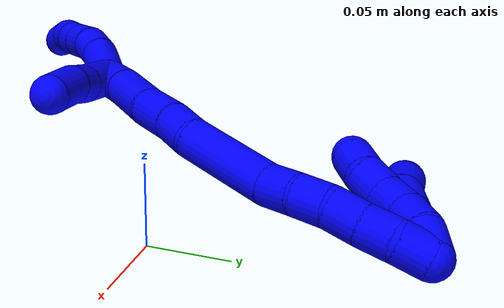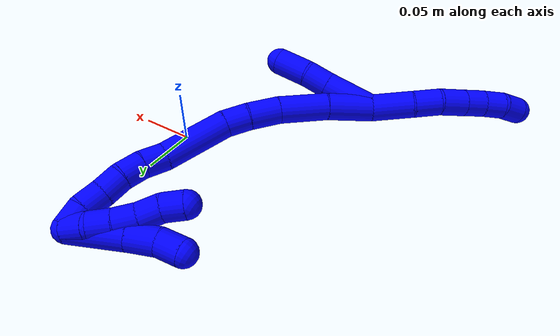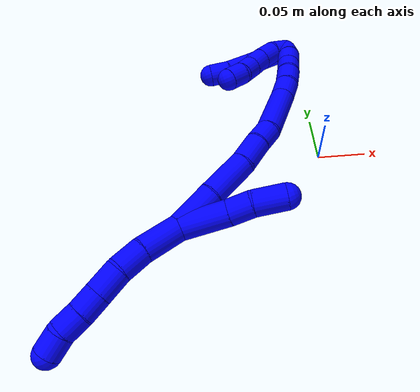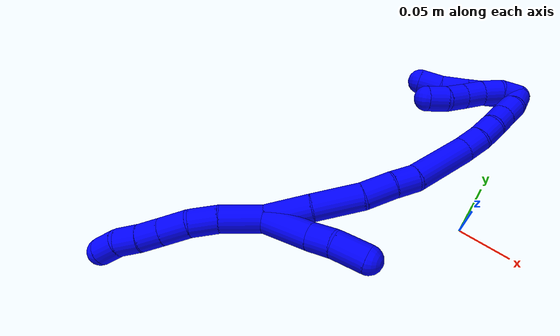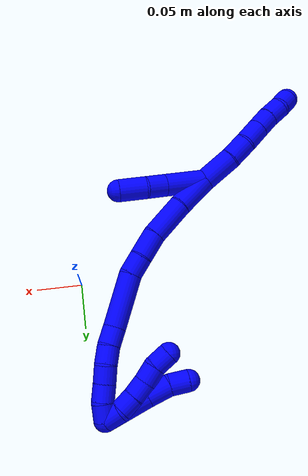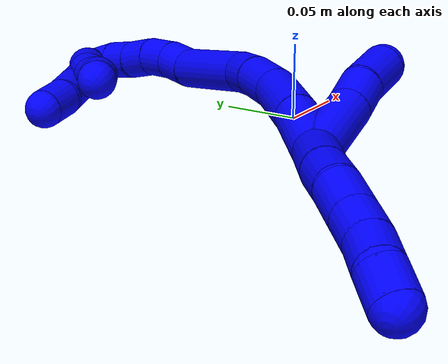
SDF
<sdf version="1.7">
 <world name="default">
  <model name="1">
   <static>0</static>
   <link name="1">
    <collision name="collision-cylinder-e_1_2_8">
     <pose>-0.010186 -0.006164 -0.015631 2.76595 -0.544979 -1.94704</pose>
     <geometry><cylinder><radius>0.0125</radius><length>0.039297</length></cylinder></geometry>
     <surface>
      <friction><ode><mu>1.16</mu><mu2>1.16</mu2><slip1>0</slip1><slip2>0</slip2></ode></friction>
      <contact><ode><kp>1e+06</kp><kd>1</kd><max_vel>0</max_vel><min_depth>0.001</min_depth></ode></contact>
     </surface>
    </collision>
    <visual name="visual-cylinder-e_1_2_8">
     <pose>-0.010186 -0.006164 -0.015631 2.76595 -0.544979 -1.94704</pose>
     <geometry><cylinder><radius>0.0125</radius><length>0.039297</length></cylinder></geometry>
     <material><ambient>0 0 1 1</ambient></material>
    </visual>
    <collision name="collision-cylinder-e_2_8_9">
     <pose>-0.026179 -0.017944 -0.040988 2.61799 -0.477225 -1.47422</pose>
     <geometry><cylinder><radius>0.0125</radius><length>0.025287</length></cylinder></geometry>
     <surface>
      <friction><ode><mu>1.16</mu><mu2>1.16</mu2><slip1>0</slip1><slip2>0</slip2></ode></friction>
      <contact><ode><kp>1e+06</kp><kd>1</kd><max_vel>0</max_vel><min_depth>0.001</min_depth></ode></contact>
     </surface>
    </collision>
    <visual name="visual-cylinder-e_2_8_9">
     <pose>-0.026179 -0.017944 -0.040988 2.61799 -0.477225 -1.47422</pose>
     <geometry><cylinder><radius>0.0125</radius><length>0.025287</length></cylinder></geometry>
     <material><ambient>0 0 1 1</ambient></material>
    </visual>
    <collision name="collision-cylinder-e_3_9_10">
     <pose>-0.035426 -0.030533 -0.060449 2.52001 -0.279669 -0.826012</pose>
     <geometry><cylinder><radius>0.0125</radius><length>0.02492</length></cylinder></geometry>
     <surface>
      <friction><ode><mu>1.16</mu><mu2>1.16</mu2><slip1>0</slip1><slip2>0</slip2></ode></friction>
      <contact><ode><kp>1e+06</kp><kd>1</kd><max_vel>0</max_vel><min_depth>0.001</min_depth></ode></contact>
     </surface>
    </collision>
    <visual name="visual-cylinder-e_3_9_10">
     <pose>-0.035426 -0.030533 -0.060449 2.52001 -0.279669 -0.826012</pose>
     <geometry><cylinder><radius>0.0125</radius><length>0.02492</length></cylinder></geometry>
     <material><ambient>0 0 1 1</ambient></material>
    </visual>
    <collision name="collision-cylinder-e_4_10_11">
     <pose>-0.041743 -0.04311 -0.078096 2.52532 -0.288602 -0.856589</pose>
     <geometry><cylinder><radius>0.0125</radius><length>0.020225</length></cylinder></geometry>
     <surface>
      <friction><ode><mu>1.16</mu><mu2>1.16</mu2><slip1>0</slip1><slip2>0</slip2></ode></friction>
      <contact><ode><kp>1e+06</kp><kd>1</kd><max_vel>0</max_vel><min_depth>0.001</min_depth></ode></contact>
     </surface>
    </collision>
    <visual name="visual-cylinder-e_4_10_11">
     <pose>-0.041743 -0.04311 -0.078096 2.52532 -0.288602 -0.856589</pose>
     <geometry><cylinder><radius>0.0125</radius><length>0.020225</length></cylinder></geometry>
     <material><ambient>0 0 1 1</ambient></material>
    </visual>
    <collision name="collision-cylinder-e_5_11_12">
     <pose>-0.047367 -0.053471 -0.094465 2.62923 -0.275746 -0.974272</pose>
     <geometry><cylinder><radius>0.0125</radius><length>0.02017</length></cylinder></geometry>
     <surface>
      <friction><ode><mu>1.16</mu><mu2>1.16</mu2><slip1>0</slip1><slip2>0</slip2></ode></friction>
      <contact><ode><kp>1e+06</kp><kd>1</kd><max_vel>0</max_vel><min_depth>0.001</min_depth></ode></contact>
     </surface>
    </collision>
    <visual name="visual-cylinder-e_5_11_12">
     <pose>-0.047367 -0.053471 -0.094465 2.62923 -0.275746 -0.974272</pose>
     <geometry><cylinder><radius>0.0125</radius><length>0.02017</length></cylinder></geometry>
     <material><ambient>0 0 1 1</ambient></material>
    </visual>
    <collision name="collision-cylinder-e_6_12_6">
     <pose>-0.050156 -0.064517 -0.110762 2.4655 -0.004314 -0.012272</pose>
     <geometry><cylinder><radius>0.0125</radius><length>0.020102</length></cylinder></geometry>
     <surface>
      <friction><ode><mu>1.16</mu><mu2>1.16</mu2><slip1>0</slip1><slip2>0</slip2></ode></friction>
      <contact><ode><kp>1e+06</kp><kd>1</kd><max_vel>0</max_vel><min_depth>0.001</min_depth></ode></contact>
     </surface>
    </collision>
    <visual name="visual-cylinder-e_6_12_6">
     <pose>-0.050156 -0.064517 -0.110762 2.4655 -0.004314 -0.012272</pose>
     <geometry><cylinder><radius>0.0125</radius><length>0.020102</length></cylinder></geometry>
     <material><ambient>0 0 1 1</ambient></material>
    </visual>
    <collision name="collision-cylinder-e_1_2_13">
     <pose>0.002231 -0.001014 0.023285 0.043506 0.095439 0.002078</pose>
     <geometry><cylinder><radius>0.0125</radius><length>0.046827</length></cylinder></geometry>
     <surface>
      <friction><ode><mu>1.16</mu><mu2>1.16</mu2><slip1>0</slip1><slip2>0</slip2></ode></friction>
      <contact><ode><kp>1e+06</kp><kd>1</kd><max_vel>0</max_vel><min_depth>0.001</min_depth></ode></contact>
     </surface>
    </collision>
    <visual name="visual-cylinder-e_1_2_13">
     <pose>0.002231 -0.001014 0.023285 0.043506 0.095439 0.002078</pose>
     <geometry><cylinder><radius>0.0125</radius><length>0.046827</length></cylinder></geometry>
     <material><ambient>0 0 1 1</ambient></material>
    </visual>
    <collision name="collision-cylinder-e_2_13_14">
     <pose>0.004748 -0.001805 0.057738 -0.019862 0.02553 -0.000254</pose>
     <geometry><cylinder><radius>0.0125</radius><length>0.022348</length></cylinder></geometry>
     <surface>
      <friction><ode><mu>1.16</mu><mu2>1.16</mu2><slip1>0</slip1><slip2>0</slip2></ode></friction>
      <contact><ode><kp>1e+06</kp><kd>1</kd><max_vel>0</max_vel><min_depth>0.001</min_depth></ode></contact>
     </surface>
    </collision>
    <visual name="visual-cylinder-e_2_13_14">
     <pose>0.004748 -0.001805 0.057738 -0.019862 0.02553 -0.000254</pose>
     <geometry><cylinder><radius>0.0125</radius><length>0.022348</length></cylinder></geometry>
     <material><ambient>0 0 1 1</ambient></material>
    </visual>
    <collision name="collision-cylinder-e_3_14_5">
     <pose>0.007688 -0.003292 0.083992 0.112785 0.173114 0.009797</pose>
     <geometry><cylinder><radius>0.0125</radius><length>0.030825</length></cylinder></geometry>
     <surface>
      <friction><ode><mu>1.16</mu><mu2>1.16</mu2><slip1>0</slip1><slip2>0</slip2></ode></friction>
      <contact><ode><kp>1e+06</kp><kd>1</kd><max_vel>0</max_vel><min_depth>0.001</min_depth></ode></contact>
     </surface>
    </collision>
    <visual name="visual-cylinder-e_3_14_5">
     <pose>0.007688 -0.003292 0.083992 0.112785 0.173114 0.009797</pose>
     <geometry><cylinder><radius>0.0125</radius><length>0.030825</length></cylinder></geometry>
     <material><ambient>0 0 1 1</ambient></material>
    </visual>
    <collision name="collision-cylinder-e_1_2_15">
     <pose>0.006608 0.010851 0.017107 -0.565263 0.31533 -0.092275</pose>
     <geometry><cylinder><radius>0.0125</radius><length>0.042617</length></cylinder></geometry>
     <surface>
      <friction><ode><mu>1.16</mu><mu2>1.16</mu2><slip1>0</slip1><slip2>0</slip2></ode></friction>
      <contact><ode><kp>1e+06</kp><kd>1</kd><max_vel>0</max_vel><min_depth>0.001</min_depth></ode></contact>
     </surface>
    </collision>
    <visual name="visual-cylinder-e_1_2_15">
     <pose>0.006608 0.010851 0.017107 -0.565263 0.31533 -0.092275</pose>
     <geometry><cylinder><radius>0.0125</radius><length>0.042617</length></cylinder></geometry>
     <material><ambient>0 0 1 1</ambient></material>
    </visual>
    <collision name="collision-cylinder-e_2_15_16">
     <pose>0.02243 0.033124 0.051261 -0.590306 0.421989 -0.130054</pose>
     <geometry><cylinder><radius>0.0125</radius><length>0.044988</length></cylinder></geometry>
     <surface>
      <friction><ode><mu>1.16</mu><mu2>1.16</mu2><slip1>0</slip1><slip2>0</slip2></ode></friction>
      <contact><ode><kp>1e+06</kp><kd>1</kd><max_vel>0</max_vel><min_depth>0.001</min_depth></ode></contact>
     </surface>
    </collision>
    <visual name="visual-cylinder-e_2_15_16">
     <pose>0.02243 0.033124 0.051261 -0.590306 0.421989 -0.130054</pose>
     <geometry><cylinder><radius>0.0125</radius><length>0.044988</length></cylinder></geometry>
     <material><ambient>0 0 1 1</ambient></material>
    </visual>
    <collision name="collision-cylinder-e_3_16_17">
     <pose>0.038166 0.053466 0.077448 -0.773233 0.472228 -0.195278</pose>
     <geometry><cylinder><radius>0.0125</radius><length>0.02868</length></cylinder></geometry>
     <surface>
      <friction><ode><mu>1.16</mu><mu2>1.16</mu2><slip1>0</slip1><slip2>0</slip2></ode></friction>
      <contact><ode><kp>1e+06</kp><kd>1</kd><max_vel>0</max_vel><min_depth>0.001</min_depth></ode></contact>
     </surface>
    </collision>
    <visual name="visual-cylinder-e_3_16_17">
     <pose>0.038166 0.053466 0.077448 -0.773233 0.472228 -0.195278</pose>
     <geometry><cylinder><radius>0.0125</radius><length>0.02868</length></cylinder></geometry>
     <material><ambient>0 0 1 1</ambient></material>
    </visual>
    <collision name="collision-cylinder-e_4_17_18">
     <pose>0.050868 0.068585 0.093203 -0.75298 0.59828 -0.242649</pose>
     <geometry><cylinder><radius>0.0125</radius><length>0.021943</length></cylinder></geometry>
     <surface>
      <friction><ode><mu>1.16</mu><mu2>1.16</mu2><slip1>0</slip1><slip2>0</slip2></ode></friction>
      <contact><ode><kp>1e+06</kp><kd>1</kd><max_vel>0</max_vel><min_depth>0.001</min_depth></ode></contact>
     </surface>
    </collision>
    <visual name="visual-cylinder-e_4_17_18">
     <pose>0.050868 0.068585 0.093203 -0.75298 0.59828 -0.242649</pose>
     <geometry><cylinder><radius>0.0125</radius><length>0.021943</length></cylinder></geometry>
     <material><ambient>0 0 1 1</ambient></material>
    </visual>
    <collision name="collision-cylinder-e_5_18_19">
     <pose>0.07505 0.095988 0.111844 -1.05486 0.636126 -0.378947</pose>
     <geometry><cylinder><radius>0.0125</radius><length>0.060609</length></cylinder></geometry>
     <surface>
      <friction><ode><mu>1.16</mu><mu2>1.16</mu2><slip1>0</slip1><slip2>0</slip2></ode></friction>
      <contact><ode><kp>1e+06</kp><kd>1</kd><max_vel>0</max_vel><min_depth>0.001</min_depth></ode></contact>
     </surface>
    </collision>
    <visual name="visual-cylinder-e_5_18_19">
     <pose>0.07505 0.095988 0.111844 -1.05486 0.636126 -0.378947</pose>
     <geometry><cylinder><radius>0.0125</radius><length>0.060609</length></cylinder></geometry>
     <material><ambient>0 0 1 1</ambient></material>
    </visual>
    <collision name="collision-cylinder-e_6_19_20">
     <pose>0.097315 0.12541 0.128799 -1.03052 0.418362 -0.239281</pose>
     <geometry><cylinder><radius>0.0125</radius><length>0.020976</length></cylinder></geometry>
     <surface>
      <friction><ode><mu>1.16</mu><mu2>1.16</mu2><slip1>0</slip1><slip2>0</slip2></ode></friction>
      <contact><ode><kp>1e+06</kp><kd>1</kd><max_vel>0</max_vel><min_depth>0.001</min_depth></ode></contact>
     </surface>
    </collision>
    <visual name="visual-cylinder-e_6_19_20">
     <pose>0.097315 0.12541 0.128799 -1.03052 0.418362 -0.239281</pose>
     <geometry><cylinder><radius>0.0125</radius><length>0.020976</length></cylinder></geometry>
     <material><ambient>0 0 1 1</ambient></material>
    </visual>
    <collision name="collision-cylinder-e_7_20_21">
     <pose>0.106469 0.141885 0.136853 -1.2091 0.506169 -0.353611</pose>
     <geometry><cylinder><radius>0.0125</radius><length>0.020188</length></cylinder></geometry>
     <surface>
      <friction><ode><mu>1.16</mu><mu2>1.16</mu2><slip1>0</slip1><slip2>0</slip2></ode></friction>
      <contact><ode><kp>1e+06</kp><kd>1</kd><max_vel>0</max_vel><min_depth>0.001</min_depth></ode></contact>
     </surface>
    </collision>
    <visual name="visual-cylinder-e_7_20_21">
     <pose>0.106469 0.141885 0.136853 -1.2091 0.506169 -0.353611</pose>
     <geometry><cylinder><radius>0.0125</radius><length>0.020188</length></cylinder></geometry>
     <material><ambient>0 0 1 1</ambient></material>
    </visual>
    <collision name="collision-cylinder-e_8_21_22">
     <pose>0.117732 0.157666 0.14166 -1.35065 0.690414 -0.560878</pose>
     <geometry><cylinder><radius>0.0125</radius><length>0.02</length></cylinder></geometry>
     <surface>
      <friction><ode><mu>1.16</mu><mu2>1.16</mu2><slip1>0</slip1><slip2>0</slip2></ode></friction>
      <contact><ode><kp>1e+06</kp><kd>1</kd><max_vel>0</max_vel><min_depth>0.001</min_depth></ode></contact>
     </surface>
    </collision>
    <visual name="visual-cylinder-e_8_21_22">
     <pose>0.117732 0.157666 0.14166 -1.35065 0.690414 -0.560878</pose>
     <geometry><cylinder><radius>0.0125</radius><length>0.02</length></cylinder></geometry>
     <material><ambient>0 0 1 1</ambient></material>
    </visual>
    <collision name="collision-cylinder-e_9_22_23">
     <pose>0.129905 0.173034 0.14553 -1.29904 0.619281 -0.476702</pose>
     <geometry><cylinder><radius>0.0125</radius><length>0.02</length></cylinder></geometry>
     <surface>
      <friction><ode><mu>1.16</mu><mu2>1.16</mu2><slip1>0</slip1><slip2>0</slip2></ode></friction>
      <contact><ode><kp>1e+06</kp><kd>1</kd><max_vel>0</max_vel><min_depth>0.001</min_depth></ode></contact>
     </surface>
    </collision>
    <visual name="visual-cylinder-e_9_22_23">
     <pose>0.129905 0.173034 0.14553 -1.29904 0.619281 -0.476702</pose>
     <geometry><cylinder><radius>0.0125</radius><length>0.02</length></cylinder></geometry>
     <material><ambient>0 0 1 1</ambient></material>
    </visual>
    <collision name="collision-cylinder-e_10_23_1">
     <pose>0.14225 0.188427 0.147231 -1.63495 0.712937 -0.755951</pose>
     <geometry><cylinder><radius>0.0125</radius><length>0.02</length></cylinder></geometry>
     <surface>
      <friction><ode><mu>1.16</mu><mu2>1.16</mu2><slip1>0</slip1><slip2>0</slip2></ode></friction>
      <contact><ode><kp>1e+06</kp><kd>1</kd><max_vel>0</max_vel><min_depth>0.001</min_depth></ode></contact>
     </surface>
    </collision>
    <visual name="visual-cylinder-e_10_23_1">
     <pose>0.14225 0.188427 0.147231 -1.63495 0.712937 -0.755951</pose>
     <geometry><cylinder><radius>0.0125</radius><length>0.02</length></cylinder></geometry>
     <material><ambient>0 0 1 1</ambient></material>
    </visual>
    <collision name="collision-cylinder-e_1_1_24">
     <pose>0.142389 0.195013 0.139123 3.01596 -0.694641 -2.79751</pose>
     <geometry><cylinder><radius>0.0125</radius><length>0.02</length></cylinder></geometry>
     <surface>
      <friction><ode><mu>1.16</mu><mu2>1.16</mu2><slip1>0</slip1><slip2>0</slip2></ode></friction>
      <contact><ode><kp>1e+06</kp><kd>1</kd><max_vel>0</max_vel><min_depth>0.001</min_depth></ode></contact>
     </surface>
    </collision>
    <visual name="visual-cylinder-e_1_1_24">
     <pose>0.142389 0.195013 0.139123 3.01596 -0.694641 -2.79751</pose>
     <geometry><cylinder><radius>0.0125</radius><length>0.02</length></cylinder></geometry>
     <material><ambient>0 0 1 1</ambient></material>
    </visual>
    <collision name="collision-cylinder-e_2_24_25">
     <pose>0.130832 0.190132 0.123881 2.66665 -0.541705 -1.70772</pose>
     <geometry><cylinder><radius>0.0125</radius><length>0.02</length></cylinder></geometry>
     <surface>
      <friction><ode><mu>1.16</mu><mu2>1.16</mu2><slip1>0</slip1><slip2>0</slip2></ode></friction>
      <contact><ode><kp>1e+06</kp><kd>1</kd><max_vel>0</max_vel><min_depth>0.001</min_depth></ode></contact>
     </surface>
    </collision>
    <visual name="visual-cylinder-e_2_24_25">
     <pose>0.130832 0.190132 0.123881 2.66665 -0.541705 -1.70772</pose>
     <geometry><cylinder><radius>0.0125</radius><length>0.02</length></cylinder></geometry>
     <material><ambient>0 0 1 1</ambient></material>
    </visual>
    <collision name="collision-cylinder-e_3_25_26">
     <pose>0.120301 0.18128 0.109423 2.51652 -0.567567 -1.46851</pose>
     <geometry><cylinder><radius>0.0125</radius><length>0.02</length></cylinder></geometry>
     <surface>
      <friction><ode><mu>1.16</mu><mu2>1.16</mu2><slip1>0</slip1><slip2>0</slip2></ode></friction>
      <contact><ode><kp>1e+06</kp><kd>1</kd><max_vel>0</max_vel><min_depth>0.001</min_depth></ode></contact>
     </surface>
    </collision>
    <visual name="visual-cylinder-e_3_25_26">
     <pose>0.120301 0.18128 0.109423 2.51652 -0.567567 -1.46851</pose>
     <geometry><cylinder><radius>0.0125</radius><length>0.02</length></cylinder></geometry>
     <material><ambient>0 0 1 1</ambient></material>
    </visual>
    <collision name="collision-cylinder-e_4_26_27">
     <pose>0.108299 0.171487 0.096886 2.43564 -0.724223 -1.59867</pose>
     <geometry><cylinder><radius>0.0125</radius><length>0.02</length></cylinder></geometry>
     <surface>
      <friction><ode><mu>1.16</mu><mu2>1.16</mu2><slip1>0</slip1><slip2>0</slip2></ode></friction>
      <contact><ode><kp>1e+06</kp><kd>1</kd><max_vel>0</max_vel><min_depth>0.001</min_depth></ode></contact>
     </surface>
    </collision>
    <visual name="visual-cylinder-e_4_26_27">
     <pose>0.108299 0.171487 0.096886 2.43564 -0.724223 -1.59867</pose>
     <geometry><cylinder><radius>0.0125</radius><length>0.02</length></cylinder></geometry>
     <material><ambient>0 0 1 1</ambient></material>
    </visual>
    <collision name="collision-cylinder-e_5_27_4">
     <pose>0.09613 0.163479 0.083481 2.75365 -0.587557 -1.98979</pose>
     <geometry><cylinder><radius>0.0125</radius><length>0.02</length></cylinder></geometry>
     <surface>
      <friction><ode><mu>1.16</mu><mu2>1.16</mu2><slip1>0</slip1><slip2>0</slip2></ode></friction>
      <contact><ode><kp>1e+06</kp><kd>1</kd><max_vel>0</max_vel><min_depth>0.001</min_depth></ode></contact>
     </surface>
    </collision>
    <visual name="visual-cylinder-e_5_27_4">
     <pose>0.09613 0.163479 0.083481 2.75365 -0.587557 -1.98979</pose>
     <geometry><cylinder><radius>0.0125</radius><length>0.02</length></cylinder></geometry>
     <material><ambient>0 0 1 1</ambient></material>
    </visual>
    <collision name="collision-cylinder-e_1_1_28">
     <pose>0.138504 0.191429 0.123522 2.94824 -0.410027 -2.26879</pose>
     <geometry><cylinder><radius>0.0125</radius><length>0.051607</length></cylinder></geometry>
     <surface>
      <friction><ode><mu>1.16</mu><mu2>1.16</mu2><slip1>0</slip1><slip2>0</slip2></ode></friction>
      <contact><ode><kp>1e+06</kp><kd>1</kd><max_vel>0</max_vel><min_depth>0.001</min_depth></ode></contact>
     </surface>
    </collision>
    <visual name="visual-cylinder-e_1_1_28">
     <pose>0.138504 0.191429 0.123522 2.94824 -0.410027 -2.26879</pose>
     <geometry><cylinder><radius>0.0125</radius><length>0.051607</length></cylinder></geometry>
     <material><ambient>0 0 1 1</ambient></material>
    </visual>
    <collision name="collision-cylinder-e_2_28_29">
     <pose>0.123234 0.184971 0.088235 2.9845 -0.387463 -2.37856</pose>
     <geometry><cylinder><radius>0.0125</radius><length>0.026382</length></cylinder></geometry>
     <surface>
      <friction><ode><mu>1.16</mu><mu2>1.16</mu2><slip1>0</slip1><slip2>0</slip2></ode></friction>
      <contact><ode><kp>1e+06</kp><kd>1</kd><max_vel>0</max_vel><min_depth>0.001</min_depth></ode></contact>
     </surface>
    </collision>
    <visual name="visual-cylinder-e_2_28_29">
     <pose>0.123234 0.184971 0.088235 2.9845 -0.387463 -2.37856</pose>
     <geometry><cylinder><radius>0.0125</radius><length>0.026382</length></cylinder></geometry>
     <material><ambient>0 0 1 1</ambient></material>
    </visual>
    <collision name="collision-cylinder-e_3_29_3">
     <pose>0.115442 0.18383 0.065559 -3.06921 -0.257993 2.59724</pose>
     <geometry><cylinder><radius>0.0125</radius><length>0.022011</length></cylinder></geometry>
     <surface>
      <friction><ode><mu>1.16</mu><mu2>1.16</mu2><slip1>0</slip1><slip2>0</slip2></ode></friction>
      <contact><ode><kp>1e+06</kp><kd>1</kd><max_vel>0</max_vel><min_depth>0.001</min_depth></ode></contact>
     </surface>
    </collision>
    <visual name="visual-cylinder-e_3_29_3">
     <pose>0.115442 0.18383 0.065559 -3.06921 -0.257993 2.59724</pose>
     <geometry><cylinder><radius>0.0125</radius><length>0.022011</length></cylinder></geometry>
     <material><ambient>0 0 1 1</ambient></material>
    </visual>
    <collision name="collision-sphere-3">
     <pose>0.112634 0.184599 0.054946 0 -0 0</pose>
     <geometry><sphere><radius>0.0125</radius></sphere></geometry>
     <surface>
      <friction><ode><mu>1.16</mu><mu2>1.16</mu2><slip1>0</slip1><slip2>0</slip2></ode></friction>
      <contact><ode><kp>1e+06</kp><kd>1</kd><max_vel>0</max_vel><min_depth>0.001</min_depth></ode></contact>
     </surface>
    </collision>
    <visual name="visual-sphere-3">
     <pose>0.112634 0.184599 0.054946 0 -0 0</pose>
     <geometry><sphere><radius>0.0125</radius></sphere></geometry>
     <material><ambient>0 0 1 1</ambient></material>
    </visual>
    <collision name="collision-sphere-29">
     <pose>0.11825 0.18306 0.076173 0 -0 0</pose>
     <geometry><sphere><radius>0.0125</radius></sphere></geometry>
     <surface>
      <friction><ode><mu>1.16</mu><mu2>1.16</mu2><slip1>0</slip1><slip2>0</slip2></ode></friction>
      <contact><ode><kp>1e+06</kp><kd>1</kd><max_vel>0</max_vel><min_depth>0.001</min_depth></ode></contact>
     </surface>
    </collision>
    <visual name="visual-sphere-29">
     <pose>0.11825 0.18306 0.076173 0 -0 0</pose>
     <geometry><sphere><radius>0.0125</radius></sphere></geometry>
     <material><ambient>0 0 1 1</ambient></material>
    </visual>
    <collision name="collision-sphere-28">
     <pose>0.128218 0.186882 0.100298 0 -0 0</pose>
     <geometry><sphere><radius>0.0125</radius></sphere></geometry>
     <surface>
      <friction><ode><mu>1.16</mu><mu2>1.16</mu2><slip1>0</slip1><slip2>0</slip2></ode></friction>
      <contact><ode><kp>1e+06</kp><kd>1</kd><max_vel>0</max_vel><min_depth>0.001</min_depth></ode></contact>
     </surface>
    </collision>
    <visual name="visual-sphere-28">
     <pose>0.128218 0.186882 0.100298 0 -0 0</pose>
     <geometry><sphere><radius>0.0125</radius></sphere></geometry>
     <material><ambient>0 0 1 1</ambient></material>
    </visual>
    <collision name="collision-sphere-4">
     <pose>0.090587 0.160331 0.075777 0 -0 0</pose>
     <geometry><sphere><radius>0.0125</radius></sphere></geometry>
     <surface>
      <friction><ode><mu>1.16</mu><mu2>1.16</mu2><slip1>0</slip1><slip2>0</slip2></ode></friction>
      <contact><ode><kp>1e+06</kp><kd>1</kd><max_vel>0</max_vel><min_depth>0.001</min_depth></ode></contact>
     </surface>
    </collision>
    <visual name="visual-sphere-4">
     <pose>0.090587 0.160331 0.075777 0 -0 0</pose>
     <geometry><sphere><radius>0.0125</radius></sphere></geometry>
     <material><ambient>0 0 1 1</ambient></material>
    </visual>
    <collision name="collision-sphere-27">
     <pose>0.101674 0.166628 0.091186 0 -0 0</pose>
     <geometry><sphere><radius>0.0125</radius></sphere></geometry>
     <surface>
      <friction><ode><mu>1.16</mu><mu2>1.16</mu2><slip1>0</slip1><slip2>0</slip2></ode></friction>
      <contact><ode><kp>1e+06</kp><kd>1</kd><max_vel>0</max_vel><min_depth>0.001</min_depth></ode></contact>
     </surface>
    </collision>
    <visual name="visual-sphere-27">
     <pose>0.101674 0.166628 0.091186 0 -0 0</pose>
     <geometry><sphere><radius>0.0125</radius></sphere></geometry>
     <material><ambient>0 0 1 1</ambient></material>
    </visual>
    <collision name="collision-sphere-26">
     <pose>0.114925 0.176346 0.102586 0 -0 0</pose>
     <geometry><sphere><radius>0.0125</radius></sphere></geometry>
     <surface>
      <friction><ode><mu>1.16</mu><mu2>1.16</mu2><slip1>0</slip1><slip2>0</slip2></ode></friction>
      <contact><ode><kp>1e+06</kp><kd>1</kd><max_vel>0</max_vel><min_depth>0.001</min_depth></ode></contact>
     </surface>
    </collision>
    <visual name="visual-sphere-26">
     <pose>0.114925 0.176346 0.102586 0 -0 0</pose>
     <geometry><sphere><radius>0.0125</radius></sphere></geometry>
     <material><ambient>0 0 1 1</ambient></material>
    </visual>
    <collision name="collision-sphere-25">
     <pose>0.125676 0.186214 0.116261 0 -0 0</pose>
     <geometry><sphere><radius>0.0125</radius></sphere></geometry>
     <surface>
      <friction><ode><mu>1.16</mu><mu2>1.16</mu2><slip1>0</slip1><slip2>0</slip2></ode></friction>
      <contact><ode><kp>1e+06</kp><kd>1</kd><max_vel>0</max_vel><min_depth>0.001</min_depth></ode></contact>
     </surface>
    </collision>
    <visual name="visual-sphere-25">
     <pose>0.125676 0.186214 0.116261 0 -0 0</pose>
     <geometry><sphere><radius>0.0125</radius></sphere></geometry>
     <material><ambient>0 0 1 1</ambient></material>
    </visual>
    <collision name="collision-sphere-24">
     <pose>0.135988 0.194051 0.131501 0 -0 0</pose>
     <geometry><sphere><radius>0.0125</radius></sphere></geometry>
     <surface>
      <friction><ode><mu>1.16</mu><mu2>1.16</mu2><slip1>0</slip1><slip2>0</slip2></ode></friction>
      <contact><ode><kp>1e+06</kp><kd>1</kd><max_vel>0</max_vel><min_depth>0.001</min_depth></ode></contact>
     </surface>
    </collision>
    <visual name="visual-sphere-24">
     <pose>0.135988 0.194051 0.131501 0 -0 0</pose>
     <geometry><sphere><radius>0.0125</radius></sphere></geometry>
     <material><ambient>0 0 1 1</ambient></material>
    </visual>
    <collision name="collision-sphere-1">
     <pose>0.148791 0.195976 0.146746 0 -0 0</pose>
     <geometry><sphere><radius>0.0125</radius></sphere></geometry>
     <surface>
      <friction><ode><mu>1.16</mu><mu2>1.16</mu2><slip1>0</slip1><slip2>0</slip2></ode></friction>
      <contact><ode><kp>1e+06</kp><kd>1</kd><max_vel>0</max_vel><min_depth>0.001</min_depth></ode></contact>
     </surface>
    </collision>
    <visual name="visual-sphere-1">
     <pose>0.148791 0.195976 0.146746 0 -0 0</pose>
     <geometry><sphere><radius>0.0125</radius></sphere></geometry>
     <material><ambient>0 0 1 1</ambient></material>
    </visual>
    <collision name="collision-sphere-23">
     <pose>0.135709 0.180878 0.147716 0 -0 0</pose>
     <geometry><sphere><radius>0.0125</radius></sphere></geometry>
     <surface>
      <friction><ode><mu>1.16</mu><mu2>1.16</mu2><slip1>0</slip1><slip2>0</slip2></ode></friction>
      <contact><ode><kp>1e+06</kp><kd>1</kd><max_vel>0</max_vel><min_depth>0.001</min_depth></ode></contact>
     </surface>
    </collision>
    <visual name="visual-sphere-23">
     <pose>0.135709 0.180878 0.147716 0 -0 0</pose>
     <geometry><sphere><radius>0.0125</radius></sphere></geometry>
     <material><ambient>0 0 1 1</ambient></material>
    </visual>
    <collision name="collision-sphere-22">
     <pose>0.1241 0.16519 0.143344 0 -0 0</pose>
     <geometry><sphere><radius>0.0125</radius></sphere></geometry>
     <surface>
      <friction><ode><mu>1.16</mu><mu2>1.16</mu2><slip1>0</slip1><slip2>0</slip2></ode></friction>
      <contact><ode><kp>1e+06</kp><kd>1</kd><max_vel>0</max_vel><min_depth>0.001</min_depth></ode></contact>
     </surface>
    </collision>
    <visual name="visual-sphere-22">
     <pose>0.1241 0.16519 0.143344 0 -0 0</pose>
     <geometry><sphere><radius>0.0125</radius></sphere></geometry>
     <material><ambient>0 0 1 1</ambient></material>
    </visual>
    <collision name="collision-sphere-21">
     <pose>0.111363 0.150142 0.139977 0 -0 0</pose>
     <geometry><sphere><radius>0.0125</radius></sphere></geometry>
     <surface>
      <friction><ode><mu>1.16</mu><mu2>1.16</mu2><slip1>0</slip1><slip2>0</slip2></ode></friction>
      <contact><ode><kp>1e+06</kp><kd>1</kd><max_vel>0</max_vel><min_depth>0.001</min_depth></ode></contact>
     </surface>
    </collision>
    <visual name="visual-sphere-21">
     <pose>0.111363 0.150142 0.139977 0 -0 0</pose>
     <geometry><sphere><radius>0.0125</radius></sphere></geometry>
     <material><ambient>0 0 1 1</ambient></material>
    </visual>
    <collision name="collision-sphere-12">
     <pose>-0.050113 -0.058228 -0.102923 0 -0 0</pose>
     <geometry><sphere><radius>0.0125</radius></sphere></geometry>
     <surface>
      <friction><ode><mu>1.16</mu><mu2>1.16</mu2><slip1>0</slip1><slip2>0</slip2></ode></friction>
      <contact><ode><kp>1e+06</kp><kd>1</kd><max_vel>0</max_vel><min_depth>0.001</min_depth></ode></contact>
     </surface>
    </collision>
    <visual name="visual-sphere-12">
     <pose>-0.050113 -0.058228 -0.102923 0 -0 0</pose>
     <geometry><sphere><radius>0.0125</radius></sphere></geometry>
     <material><ambient>0 0 1 1</ambient></material>
    </visual>
    <collision name="collision-sphere-11">
     <pose>-0.044621 -0.048713 -0.086007 0 -0 0</pose>
     <geometry><sphere><radius>0.0125</radius></sphere></geometry>
     <surface>
      <friction><ode><mu>1.16</mu><mu2>1.16</mu2><slip1>0</slip1><slip2>0</slip2></ode></friction>
      <contact><ode><kp>1e+06</kp><kd>1</kd><max_vel>0</max_vel><min_depth>0.001</min_depth></ode></contact>
     </surface>
    </collision>
    <visual name="visual-sphere-11">
     <pose>-0.044621 -0.048713 -0.086007 0 -0 0</pose>
     <geometry><sphere><radius>0.0125</radius></sphere></geometry>
     <material><ambient>0 0 1 1</ambient></material>
    </visual>
    <collision name="collision-sphere-10">
     <pose>-0.038865 -0.037507 -0.070185 0 -0 0</pose>
     <geometry><sphere><radius>0.0125</radius></sphere></geometry>
     <surface>
      <friction><ode><mu>1.16</mu><mu2>1.16</mu2><slip1>0</slip1><slip2>0</slip2></ode></friction>
      <contact><ode><kp>1e+06</kp><kd>1</kd><max_vel>0</max_vel><min_depth>0.001</min_depth></ode></contact>
     </surface>
    </collision>
    <visual name="visual-sphere-10">
     <pose>-0.038865 -0.037507 -0.070185 0 -0 0</pose>
     <geometry><sphere><radius>0.0125</radius></sphere></geometry>
     <material><ambient>0 0 1 1</ambient></material>
    </visual>
    <collision name="collision-sphere-9">
     <pose>-0.031986 -0.023559 -0.050714 0 -0 0</pose>
     <geometry><sphere><radius>0.0125</radius></sphere></geometry>
     <surface>
      <friction><ode><mu>1.16</mu><mu2>1.16</mu2><slip1>0</slip1><slip2>0</slip2></ode></friction>
      <contact><ode><kp>1e+06</kp><kd>1</kd><max_vel>0</max_vel><min_depth>0.001</min_depth></ode></contact>
     </surface>
    </collision>
    <visual name="visual-sphere-9">
     <pose>-0.031986 -0.023559 -0.050714 0 -0 0</pose>
     <geometry><sphere><radius>0.0125</radius></sphere></geometry>
     <material><ambient>0 0 1 1</ambient></material>
    </visual>
    <collision name="collision-sphere-2">
     <geometry><sphere><radius>0.0125</radius></sphere></geometry>
     <surface>
      <friction><ode><mu>1.16</mu><mu2>1.16</mu2><slip1>0</slip1><slip2>0</slip2></ode></friction>
      <contact><ode><kp>1e+06</kp><kd>1</kd><max_vel>0</max_vel><min_depth>0.001</min_depth></ode></contact>
     </surface>
    </collision>
    <visual name="visual-sphere-2">
     <geometry><sphere><radius>0.0125</radius></sphere></geometry>
     <material><ambient>0 0 1 1</ambient></material>
    </visual>
    <collision name="collision-sphere-19">
     <pose>0.093054 0.117192 0.12387 0 -0 0</pose>
     <geometry><sphere><radius>0.0125</radius></sphere></geometry>
     <surface>
      <friction><ode><mu>1.16</mu><mu2>1.16</mu2><slip1>0</slip1><slip2>0</slip2></ode></friction>
      <contact><ode><kp>1e+06</kp><kd>1</kd><max_vel>0</max_vel><min_depth>0.001</min_depth></ode></contact>
     </surface>
    </collision>
    <visual name="visual-sphere-19">
     <pose>0.093054 0.117192 0.12387 0 -0 0</pose>
     <geometry><sphere><radius>0.0125</radius></sphere></geometry>
     <material><ambient>0 0 1 1</ambient></material>
    </visual>
    <collision name="collision-sphere-8">
     <pose>-0.020372 -0.012328 -0.031261 0 -0 0</pose>
     <geometry><sphere><radius>0.0125</radius></sphere></geometry>
     <surface>
      <friction><ode><mu>1.16</mu><mu2>1.16</mu2><slip1>0</slip1><slip2>0</slip2></ode></friction>
      <contact><ode><kp>1e+06</kp><kd>1</kd><max_vel>0</max_vel><min_depth>0.001</min_depth></ode></contact>
     </surface>
    </collision>
    <visual name="visual-sphere-8">
     <pose>-0.020372 -0.012328 -0.031261 0 -0 0</pose>
     <geometry><sphere><radius>0.0125</radius></sphere></geometry>
     <material><ambient>0 0 1 1</ambient></material>
    </visual>
    <collision name="collision-sphere-6">
     <pose>-0.0502 -0.070806 -0.118602 0 -0 0</pose>
     <geometry><sphere><radius>0.0125</radius></sphere></geometry>
     <surface>
      <friction><ode><mu>1.16</mu><mu2>1.16</mu2><slip1>0</slip1><slip2>0</slip2></ode></friction>
      <contact><ode><kp>1e+06</kp><kd>1</kd><max_vel>0</max_vel><min_depth>0.001</min_depth></ode></contact>
     </surface>
    </collision>
    <visual name="visual-sphere-6">
     <pose>-0.0502 -0.070806 -0.118602 0 -0 0</pose>
     <geometry><sphere><radius>0.0125</radius></sphere></geometry>
     <material><ambient>0 0 1 1</ambient></material>
    </visual>
    <collision name="collision-sphere-13">
     <pose>0.004462 -0.002027 0.04657 0 -0 0</pose>
     <geometry><sphere><radius>0.0125</radius></sphere></geometry>
     <surface>
      <friction><ode><mu>1.16</mu><mu2>1.16</mu2><slip1>0</slip1><slip2>0</slip2></ode></friction>
      <contact><ode><kp>1e+06</kp><kd>1</kd><max_vel>0</max_vel><min_depth>0.001</min_depth></ode></contact>
     </surface>
    </collision>
    <visual name="visual-sphere-13">
     <pose>0.004462 -0.002027 0.04657 0 -0 0</pose>
     <geometry><sphere><radius>0.0125</radius></sphere></geometry>
     <material><ambient>0 0 1 1</ambient></material>
    </visual>
    <collision name="collision-sphere-14">
     <pose>0.005033 -0.001584 0.068907 0 -0 0</pose>
     <geometry><sphere><radius>0.0125</radius></sphere></geometry>
     <surface>
      <friction><ode><mu>1.16</mu><mu2>1.16</mu2><slip1>0</slip1><slip2>0</slip2></ode></friction>
      <contact><ode><kp>1e+06</kp><kd>1</kd><max_vel>0</max_vel><min_depth>0.001</min_depth></ode></contact>
     </surface>
    </collision>
    <visual name="visual-sphere-14">
     <pose>0.005033 -0.001584 0.068907 0 -0 0</pose>
     <geometry><sphere><radius>0.0125</radius></sphere></geometry>
     <material><ambient>0 0 1 1</ambient></material>
    </visual>
    <collision name="collision-sphere-5">
     <pose>0.010342 -0.005001 0.099077 0 -0 0</pose>
     <geometry><sphere><radius>0.0125</radius></sphere></geometry>
     <surface>
      <friction><ode><mu>1.16</mu><mu2>1.16</mu2><slip1>0</slip1><slip2>0</slip2></ode></friction>
      <contact><ode><kp>1e+06</kp><kd>1</kd><max_vel>0</max_vel><min_depth>0.001</min_depth></ode></contact>
     </surface>
    </collision>
    <visual name="visual-sphere-5">
     <pose>0.010342 -0.005001 0.099077 0 -0 0</pose>
     <geometry><sphere><radius>0.0125</radius></sphere></geometry>
     <material><ambient>0 0 1 1</ambient></material>
    </visual>
    <collision name="collision-sphere-15">
     <pose>0.013217 0.021702 0.034213 0 -0 0</pose>
     <geometry><sphere><radius>0.0125</radius></sphere></geometry>
     <surface>
      <friction><ode><mu>1.16</mu><mu2>1.16</mu2><slip1>0</slip1><slip2>0</slip2></ode></friction>
      <contact><ode><kp>1e+06</kp><kd>1</kd><max_vel>0</max_vel><min_depth>0.001</min_depth></ode></contact>
     </surface>
    </collision>
    <visual name="visual-sphere-15">
     <pose>0.013217 0.021702 0.034213 0 -0 0</pose>
     <geometry><sphere><radius>0.0125</radius></sphere></geometry>
     <material><ambient>0 0 1 1</ambient></material>
    </visual>
    <collision name="collision-sphere-16">
     <pose>0.031643 0.044546 0.068309 0 -0 0</pose>
     <geometry><sphere><radius>0.0125</radius></sphere></geometry>
     <surface>
      <friction><ode><mu>1.16</mu><mu2>1.16</mu2><slip1>0</slip1><slip2>0</slip2></ode></friction>
      <contact><ode><kp>1e+06</kp><kd>1</kd><max_vel>0</max_vel><min_depth>0.001</min_depth></ode></contact>
     </surface>
    </collision>
    <visual name="visual-sphere-16">
     <pose>0.031643 0.044546 0.068309 0 -0 0</pose>
     <geometry><sphere><radius>0.0125</radius></sphere></geometry>
     <material><ambient>0 0 1 1</ambient></material>
    </visual>
    <collision name="collision-sphere-17">
     <pose>0.044688 0.062385 0.086588 0 -0 0</pose>
     <geometry><sphere><radius>0.0125</radius></sphere></geometry>
     <surface>
      <friction><ode><mu>1.16</mu><mu2>1.16</mu2><slip1>0</slip1><slip2>0</slip2></ode></friction>
      <contact><ode><kp>1e+06</kp><kd>1</kd><max_vel>0</max_vel><min_depth>0.001</min_depth></ode></contact>
     </surface>
    </collision>
    <visual name="visual-sphere-17">
     <pose>0.044688 0.062385 0.086588 0 -0 0</pose>
     <geometry><sphere><radius>0.0125</radius></sphere></geometry>
     <material><ambient>0 0 1 1</ambient></material>
    </visual>
    <collision name="collision-sphere-18">
     <pose>0.057047 0.074784 0.099818 0 -0 0</pose>
     <geometry><sphere><radius>0.0125</radius></sphere></geometry>
     <surface>
      <friction><ode><mu>1.16</mu><mu2>1.16</mu2><slip1>0</slip1><slip2>0</slip2></ode></friction>
      <contact><ode><kp>1e+06</kp><kd>1</kd><max_vel>0</max_vel><min_depth>0.001</min_depth></ode></contact>
     </surface>
    </collision>
    <visual name="visual-sphere-18">
     <pose>0.057047 0.074784 0.099818 0 -0 0</pose>
     <geometry><sphere><radius>0.0125</radius></sphere></geometry>
     <material><ambient>0 0 1 1</ambient></material>
    </visual>
    <collision name="collision-sphere-20">
     <pose>0.101575 0.133628 0.133729 0 -0 0</pose>
     <geometry><sphere><radius>0.0125</radius></sphere></geometry>
     <surface>
      <friction><ode><mu>1.16</mu><mu2>1.16</mu2><slip1>0</slip1><slip2>0</slip2></ode></friction>
      <contact><ode><kp>1e+06</kp><kd>1</kd><max_vel>0</max_vel><min_depth>0.001</min_depth></ode></contact>
     </surface>
    </collision>
    <visual name="visual-sphere-20">
     <pose>0.101575 0.133628 0.133729 0 -0 0</pose>
     <geometry><sphere><radius>0.0125</radius></sphere></geometry>
     <material><ambient>0 0 1 1</ambient></material>
    </visual>
    <inertial>
     <pose>0.054176 0.078168 0.060714 0 -0 0</pose>
     <mass>0.75</mass>
     <inertia><ixx>1e-05</ixx><ixy>0</ixy><ixz>0</ixz><iyy>3.6e-05</iyy><iyz>0</iyz><izz>-3.2e-05</izz></inertia>
    </inertial>
   </link>
   <pose>-0.149719 -0.095333 0.036514 0.746239 1.08969 0.914493</pose>
  </model>
 </world>
</sdf>
